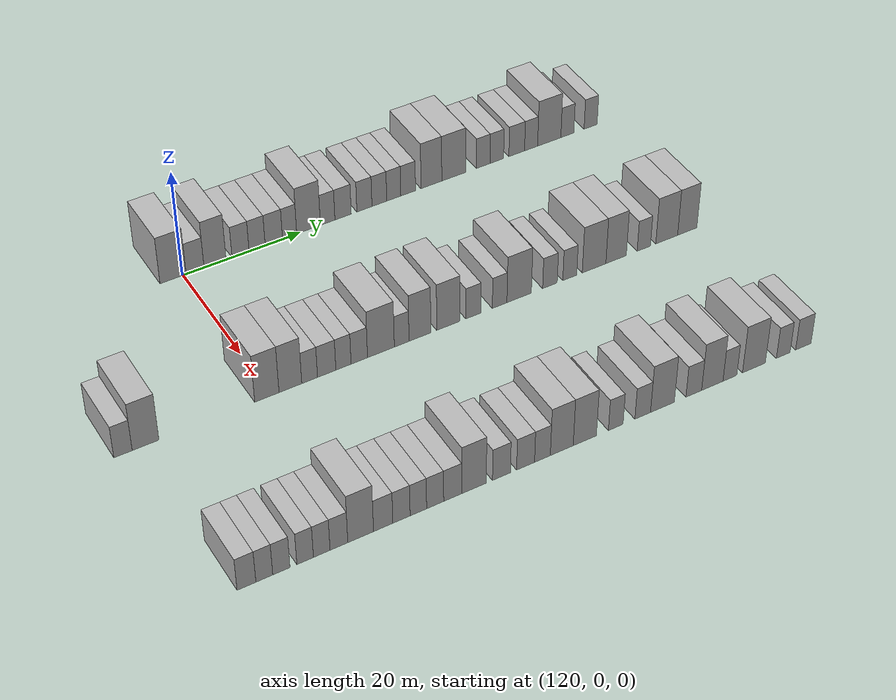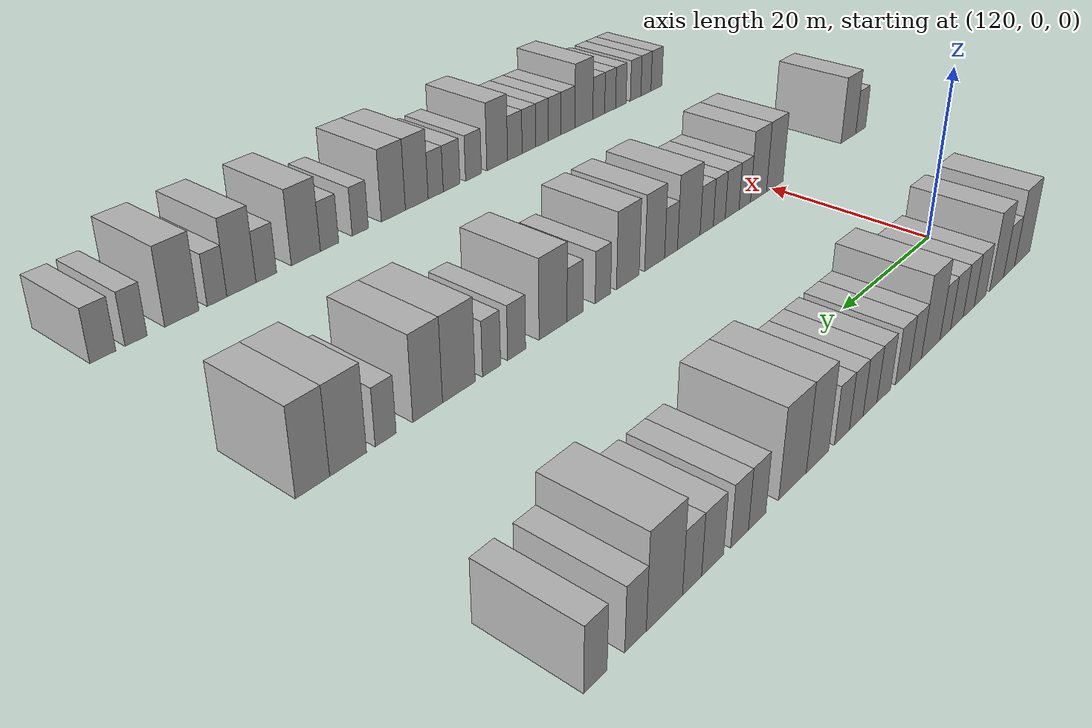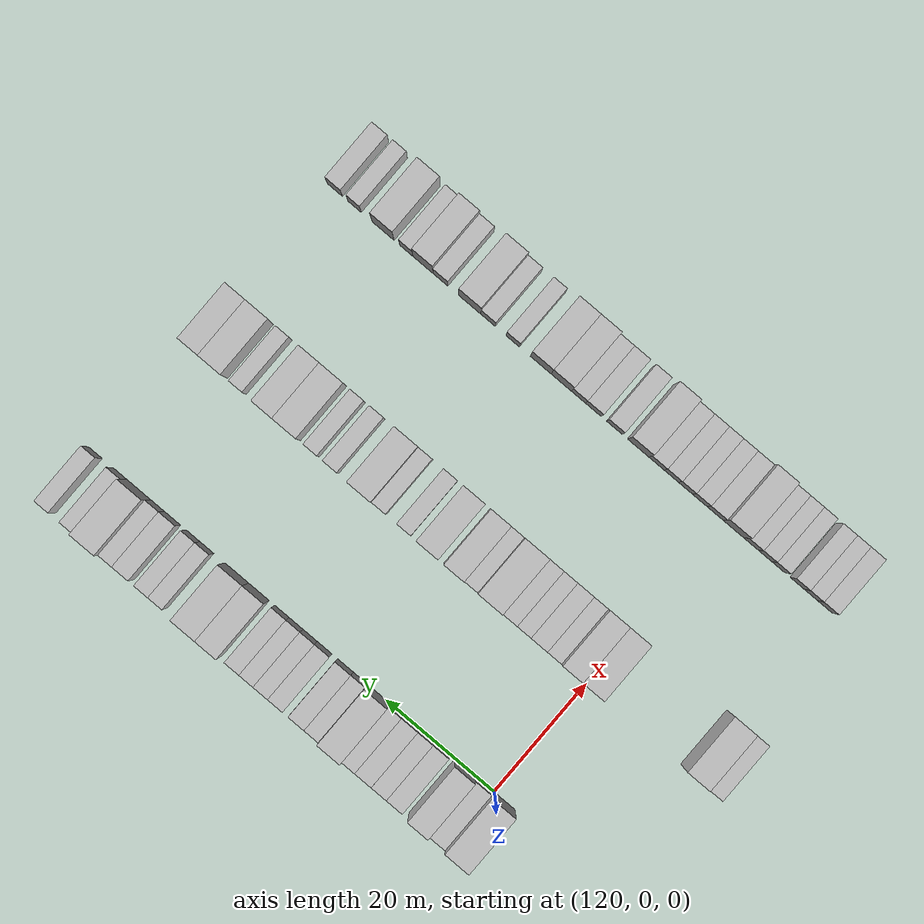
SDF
<sdf version="1.6">
 <world name="default">
  <model name="building_807">
   <static>1</static>
   <pose>115.0000 -1.6387 0 0.000000 0.000000 0.000000</pose>
   <link name="link">
    <pose>0 0 4.50 0 0 0</pose>
    <collision name="collision"><geometry><box><size>10.0000 4.3356 9.0000</size></box></geometry></collision>
    <visual name="visual">
     <cast_shadows>0</cast_shadows>
     <geometry><box><size>10.0000 4.3356 9.0000</size></box></geometry>
     <material>
      <script>
       <uri>model://HANNAS_wall/materials/scripts</uri>
       <uri>model://HANNAS_wall/materials/textures</uri>
       <name>vrc/HANNAS_wall</name>
      </script>
     </material>
    </visual>
   </link>
  </model>
  <model name="building_808">
   <static>1</static>
   <pose>115.0000 2.0270 0 0.000000 0.000000 0.000000</pose>
   <link name="link">
    <pose>0 0 3.00 0 0 0</pose>
    <collision name="collision"><geometry><box><size>10.0000 2.9957 6.0000</size></box></geometry></collision>
    <visual name="visual">
     <cast_shadows>0</cast_shadows>
     <geometry><box><size>10.0000 2.9957 6.0000</size></box></geometry>
     <material>
      <script>
       <uri>model://HANNAS_wall/materials/scripts</uri>
       <uri>model://HANNAS_wall/materials/textures</uri>
       <name>vrc/HANNAS_wall</name>
      </script>
     </material>
    </visual>
   </link>
  </model>
  <model name="building_809">
   <static>1</static>
   <pose>115.0000 5.3848 0 0.000000 0.000000 0.000000</pose>
   <link name="link">
    <pose>0 0 4.50 0 0 0</pose>
    <collision name="collision"><geometry><box><size>10.0000 3.7198 9.0000</size></box></geometry></collision>
    <visual name="visual">
     <cast_shadows>0</cast_shadows>
     <geometry><box><size>10.0000 3.7198 9.0000</size></box></geometry>
     <material>
      <script>
       <uri>model://HANNAS_wall/materials/scripts</uri>
       <uri>model://HANNAS_wall/materials/textures</uri>
       <name>vrc/HANNAS_wall</name>
      </script>
     </material>
    </visual>
   </link>
  </model>
  <model name="building_810">
   <static>1</static>
   <pose>115.0000 9.6994 0 0.000000 0.000000 0.000000</pose>
   <link name="link">
    <pose>0 0 3.00 0 0 0</pose>
    <collision name="collision"><geometry><box><size>10.0000 2.9095 6.0000</size></box></geometry></collision>
    <visual name="visual">
     <cast_shadows>0</cast_shadows>
     <geometry><box><size>10.0000 2.9095 6.0000</size></box></geometry>
     <material>
      <script>
       <uri>model://HANNAS_wall/materials/scripts</uri>
       <uri>model://HANNAS_wall/materials/textures</uri>
       <name>vrc/HANNAS_wall</name>
      </script>
     </material>
    </visual>
   </link>
  </model>
  <model name="building_811">
   <static>1</static>
   <pose>115.0000 12.5316 0 0.000000 0.000000 0.000000</pose>
   <link name="link">
    <pose>0 0 3.00 0 0 0</pose>
    <collision name="collision"><geometry><box><size>10.0000 2.7549 6.0000</size></box></geometry></collision>
    <visual name="visual">
     <cast_shadows>0</cast_shadows>
     <geometry><box><size>10.0000 2.7549 6.0000</size></box></geometry>
     <material>
      <script>
       <uri>model://HANNAS_wall/materials/scripts</uri>
       <uri>model://HANNAS_wall/materials/textures</uri>
       <name>vrc/HANNAS_wall</name>
      </script>
     </material>
    </visual>
   </link>
  </model>
  <model name="building_812">
   <static>1</static>
   <pose>115.0000 15.4057 0 0.000000 0.000000 0.000000</pose>
   <link name="link">
    <pose>0 0 3.00 0 0 0</pose>
    <collision name="collision"><geometry><box><size>10.0000 2.9932 6.0000</size></box></geometry></collision>
    <visual name="visual">
     <cast_shadows>0</cast_shadows>
     <geometry><box><size>10.0000 2.9932 6.0000</size></box></geometry>
     <material>
      <script>
       <uri>model://HANNAS_wall/materials/scripts</uri>
       <uri>model://HANNAS_wall/materials/textures</uri>
       <name>vrc/HANNAS_wall</name>
      </script>
     </material>
    </visual>
   </link>
  </model>
  <model name="building_813">
   <static>1</static>
   <pose>115.0000 18.1333 0 0.000000 0.000000 0.000000</pose>
   <link name="link">
    <pose>0 0 3.00 0 0 0</pose>
    <collision name="collision"><geometry><box><size>10.0000 2.4620 6.0000</size></box></geometry></collision>
    <visual name="visual">
     <cast_shadows>0</cast_shadows>
     <geometry><box><size>10.0000 2.4620 6.0000</size></box></geometry>
     <material>
      <script>
       <uri>model://HANNAS_wall/materials/scripts</uri>
       <uri>model://HANNAS_wall/materials/textures</uri>
       <name>vrc/HANNAS_wall</name>
      </script>
     </material>
    </visual>
   </link>
  </model>
  <model name="building_814">
   <static>1</static>
   <pose>115.0000 21.4364 0 0.000000 0.000000 0.000000</pose>
   <link name="link">
    <pose>0 0 4.50 0 0 0</pose>
    <collision name="collision"><geometry><box><size>10.0000 4.1440 9.0000</size></box></geometry></collision>
    <visual name="visual">
     <cast_shadows>0</cast_shadows>
     <geometry><box><size>10.0000 4.1440 9.0000</size></box></geometry>
     <material>
      <script>
       <uri>model://HANNAS_wall/materials/scripts</uri>
       <uri>model://HANNAS_wall/materials/textures</uri>
       <name>vrc/HANNAS_wall</name>
      </script>
     </material>
    </visual>
   </link>
  </model>
  <model name="building_815">
   <static>1</static>
   <pose>115.0000 24.7890 0 0.000000 0.000000 0.000000</pose>
   <link name="link">
    <pose>0 0 3.00 0 0 0</pose>
    <collision name="collision"><geometry><box><size>10.0000 2.5612 6.0000</size></box></geometry></collision>
    <visual name="visual">
     <cast_shadows>0</cast_shadows>
     <geometry><box><size>10.0000 2.5612 6.0000</size></box></geometry>
     <material>
      <script>
       <uri>model://HANNAS_wall/materials/scripts</uri>
       <uri>model://HANNAS_wall/materials/textures</uri>
       <name>vrc/HANNAS_wall</name>
      </script>
     </material>
    </visual>
   </link>
  </model>
  <model name="building_816">
   <static>1</static>
   <pose>115.0000 27.5146 0 0.000000 0.000000 0.000000</pose>
   <link name="link">
    <pose>0 0 3.00 0 0 0</pose>
    <collision name="collision"><geometry><box><size>10.0000 2.8899 6.0000</size></box></geometry></collision>
    <visual name="visual">
     <cast_shadows>0</cast_shadows>
     <geometry><box><size>10.0000 2.8899 6.0000</size></box></geometry>
     <material>
      <script>
       <uri>model://HANNAS_wall/materials/scripts</uri>
       <uri>model://HANNAS_wall/materials/textures</uri>
       <name>vrc/HANNAS_wall</name>
      </script>
     </material>
    </visual>
   </link>
  </model>
  <model name="building_817">
   <static>1</static>
   <pose>115.0000 31.3121 0 0.000000 0.000000 0.000000</pose>
   <link name="link">
    <pose>0 0 3.00 0 0 0</pose>
    <collision name="collision"><geometry><box><size>10.0000 2.7053 6.0000</size></box></geometry></collision>
    <visual name="visual">
     <cast_shadows>0</cast_shadows>
     <geometry><box><size>10.0000 2.7053 6.0000</size></box></geometry>
     <material>
      <script>
       <uri>model://HANNAS_wall/materials/scripts</uri>
       <uri>model://HANNAS_wall/materials/textures</uri>
       <name>vrc/HANNAS_wall</name>
      </script>
     </material>
    </visual>
   </link>
  </model>
  <model name="building_818">
   <static>1</static>
   <pose>115.0000 33.9917 0 0.000000 0.000000 0.000000</pose>
   <link name="link">
    <pose>0 0 3.00 0 0 0</pose>
    <collision name="collision"><geometry><box><size>10.0000 2.6538 6.0000</size></box></geometry></collision>
    <visual name="visual">
     <cast_shadows>0</cast_shadows>
     <geometry><box><size>10.0000 2.6538 6.0000</size></box></geometry>
     <material>
      <script>
       <uri>model://HANNAS_wall/materials/scripts</uri>
       <uri>model://HANNAS_wall/materials/textures</uri>
       <name>vrc/HANNAS_wall</name>
      </script>
     </material>
    </visual>
   </link>
  </model>
  <model name="building_819">
   <static>1</static>
   <pose>115.0000 36.5908 0 0.000000 0.000000 0.000000</pose>
   <link name="link">
    <pose>0 0 3.00 0 0 0</pose>
    <collision name="collision"><geometry><box><size>10.0000 2.5445 6.0000</size></box></geometry></collision>
    <visual name="visual">
     <cast_shadows>0</cast_shadows>
     <geometry><box><size>10.0000 2.5445 6.0000</size></box></geometry>
     <material>
      <script>
       <uri>model://HANNAS_wall/materials/scripts</uri>
       <uri>model://HANNAS_wall/materials/textures</uri>
       <name>vrc/HANNAS_wall</name>
      </script>
     </material>
    </visual>
   </link>
  </model>
  <model name="building_820">
   <static>1</static>
   <pose>115.0000 39.2015 0 0.000000 0.000000 0.000000</pose>
   <link name="link">
    <pose>0 0 3.00 0 0 0</pose>
    <collision name="collision"><geometry><box><size>10.0000 2.6769 6.0000</size></box></geometry></collision>
    <visual name="visual">
     <cast_shadows>0</cast_shadows>
     <geometry><box><size>10.0000 2.6769 6.0000</size></box></geometry>
     <material>
      <script>
       <uri>model://HANNAS_wall/materials/scripts</uri>
       <uri>model://HANNAS_wall/materials/textures</uri>
       <name>vrc/HANNAS_wall</name>
      </script>
     </material>
    </visual>
   </link>
  </model>
  <model name="building_821">
   <static>1</static>
   <pose>115.0000 43.4533 0 0.000000 0.000000 0.000000</pose>
   <link name="link">
    <pose>0 0 4.50 0 0 0</pose>
    <collision name="collision"><geometry><box><size>10.0000 3.8266 9.0000</size></box></geometry></collision>
    <visual name="visual">
     <cast_shadows>0</cast_shadows>
     <geometry><box><size>10.0000 3.8266 9.0000</size></box></geometry>
     <material>
      <script>
       <uri>model://HANNAS_wall/materials/scripts</uri>
       <uri>model://HANNAS_wall/materials/textures</uri>
       <name>vrc/HANNAS_wall</name>
      </script>
     </material>
    </visual>
   </link>
  </model>
  <model name="building_822">
   <static>1</static>
   <pose>115.0000 47.5767 0 0.000000 0.000000 0.000000</pose>
   <link name="link">
    <pose>0 0 4.50 0 0 0</pose>
    <collision name="collision"><geometry><box><size>10.0000 4.4203 9.0000</size></box></geometry></collision>
    <visual name="visual">
     <cast_shadows>0</cast_shadows>
     <geometry><box><size>10.0000 4.4203 9.0000</size></box></geometry>
     <material>
      <script>
       <uri>model://HANNAS_wall/materials/scripts</uri>
       <uri>model://HANNAS_wall/materials/textures</uri>
       <name>vrc/HANNAS_wall</name>
      </script>
     </material>
    </visual>
   </link>
  </model>
  <model name="building_823">
   <static>1</static>
   <pose>115.0000 53.0762 0 0.000000 0.000000 0.000000</pose>
   <link name="link">
    <pose>0 0 3.00 0 0 0</pose>
    <collision name="collision"><geometry><box><size>10.0000 2.5787 6.0000</size></box></geometry></collision>
    <visual name="visual">
     <cast_shadows>0</cast_shadows>
     <geometry><box><size>10.0000 2.5787 6.0000</size></box></geometry>
     <material>
      <script>
       <uri>model://HANNAS_wall/materials/scripts</uri>
       <uri>model://HANNAS_wall/materials/textures</uri>
       <name>vrc/HANNAS_wall</name>
      </script>
     </material>
    </visual>
   </link>
  </model>
  <model name="building_824">
   <static>1</static>
   <pose>115.0000 55.6441 0 0.000000 0.000000 0.000000</pose>
   <link name="link">
    <pose>0 0 3.00 0 0 0</pose>
    <collision name="collision"><geometry><box><size>10.0000 2.5570 6.0000</size></box></geometry></collision>
    <visual name="visual">
     <cast_shadows>0</cast_shadows>
     <geometry><box><size>10.0000 2.5570 6.0000</size></box></geometry>
     <material>
      <script>
       <uri>model://HANNAS_wall/materials/scripts</uri>
       <uri>model://HANNAS_wall/materials/textures</uri>
       <name>vrc/HANNAS_wall</name>
      </script>
     </material>
    </visual>
   </link>
  </model>
  <model name="building_825">
   <static>1</static>
   <pose>115.0000 59.4169 0 0.000000 0.000000 0.000000</pose>
   <link name="link">
    <pose>0 0 3.00 0 0 0</pose>
    <collision name="collision"><geometry><box><size>10.0000 2.9887 6.0000</size></box></geometry></collision>
    <visual name="visual">
     <cast_shadows>0</cast_shadows>
     <geometry><box><size>10.0000 2.9887 6.0000</size></box></geometry>
     <material>
      <script>
       <uri>model://HANNAS_wall/materials/scripts</uri>
       <uri>model://HANNAS_wall/materials/textures</uri>
       <name>vrc/HANNAS_wall</name>
      </script>
     </material>
    </visual>
   </link>
  </model>
  <model name="building_826">
   <static>1</static>
   <pose>115.0000 62.1593 0 0.000000 0.000000 0.000000</pose>
   <link name="link">
    <pose>0 0 3.00 0 0 0</pose>
    <collision name="collision"><geometry><box><size>10.0000 2.4961 6.0000</size></box></geometry></collision>
    <visual name="visual">
     <cast_shadows>0</cast_shadows>
     <geometry><box><size>10.0000 2.4961 6.0000</size></box></geometry>
     <material>
      <script>
       <uri>model://HANNAS_wall/materials/scripts</uri>
       <uri>model://HANNAS_wall/materials/textures</uri>
       <name>vrc/HANNAS_wall</name>
      </script>
     </material>
    </visual>
   </link>
  </model>
  <model name="building_827">
   <static>1</static>
   <pose>115.0000 65.6515 0 0.000000 0.000000 0.000000</pose>
   <link name="link">
    <pose>0 0 4.50 0 0 0</pose>
    <collision name="collision"><geometry><box><size>10.0000 4.4883 9.0000</size></box></geometry></collision>
    <visual name="visual">
     <cast_shadows>0</cast_shadows>
     <geometry><box><size>10.0000 4.4883 9.0000</size></box></geometry>
     <material>
      <script>
       <uri>model://HANNAS_wall/materials/scripts</uri>
       <uri>model://HANNAS_wall/materials/textures</uri>
       <name>vrc/HANNAS_wall</name>
      </script>
     </material>
    </visual>
   </link>
  </model>
  <model name="building_828">
   <static>1</static>
   <pose>115.0000 69.1563 0 0.000000 0.000000 0.000000</pose>
   <link name="link">
    <pose>0 0 3.00 0 0 0</pose>
    <collision name="collision"><geometry><box><size>10.0000 2.5214 6.0000</size></box></geometry></collision>
    <visual name="visual">
     <cast_shadows>0</cast_shadows>
     <geometry><box><size>10.0000 2.5214 6.0000</size></box></geometry>
     <material>
      <script>
       <uri>model://HANNAS_wall/materials/scripts</uri>
       <uri>model://HANNAS_wall/materials/textures</uri>
       <name>vrc/HANNAS_wall</name>
      </script>
     </material>
    </visual>
   </link>
  </model>
  <model name="building_829">
   <static>1</static>
   <pose>115.0000 73.6967 0 0.000000 0.000000 0.000000</pose>
   <link name="link">
    <pose>0 0 3.00 0 0 0</pose>
    <collision name="collision"><geometry><box><size>10.0000 2.5594 6.0000</size></box></geometry></collision>
    <visual name="visual">
     <cast_shadows>0</cast_shadows>
     <geometry><box><size>10.0000 2.5594 6.0000</size></box></geometry>
     <material>
      <script>
       <uri>model://HANNAS_wall/materials/scripts</uri>
       <uri>model://HANNAS_wall/materials/textures</uri>
       <name>vrc/HANNAS_wall</name>
      </script>
     </material>
    </visual>
   </link>
  </model>
  <model name="building_1024">
   <static>1</static>
   <pose>145.0000 -22.8852 0 0.000000 0.000000 0.000000</pose>
   <link name="link">
    <pose>0 0 3.00 0 0 0</pose>
    <collision name="collision"><geometry><box><size>10.0000 2.7635 6.0000</size></box></geometry></collision>
    <visual name="visual">
     <cast_shadows>0</cast_shadows>
     <geometry><box><size>10.0000 2.7635 6.0000</size></box></geometry>
     <material>
      <script>
       <uri>model://HANNAS_wall/materials/scripts</uri>
       <uri>model://HANNAS_wall/materials/textures</uri>
       <name>vrc/HANNAS_wall</name>
      </script>
     </material>
    </visual>
   </link>
  </model>
  <model name="building_1025">
   <static>1</static>
   <pose>145.0000 -19.4761 0 0.000000 0.000000 0.000000</pose>
   <link name="link">
    <pose>0 0 4.50 0 0 0</pose>
    <collision name="collision"><geometry><box><size>10.0000 4.0546 9.0000</size></box></geometry></collision>
    <visual name="visual">
     <cast_shadows>0</cast_shadows>
     <geometry><box><size>10.0000 4.0546 9.0000</size></box></geometry>
     <material>
      <script>
       <uri>model://HANNAS_wall/materials/scripts</uri>
       <uri>model://HANNAS_wall/materials/textures</uri>
       <name>vrc/HANNAS_wall</name>
      </script>
     </material>
    </visual>
   </link>
  </model>
  <model name="building_1026">
   <static>1</static>
   <pose>145.0000 -0.6493 0 0.000000 0.000000 0.000000</pose>
   <link name="link">
    <pose>0 0 4.50 0 0 0</pose>
    <collision name="collision"><geometry><box><size>10.0000 3.8664 9.0000</size></box></geometry></collision>
    <visual name="visual">
     <cast_shadows>0</cast_shadows>
     <geometry><box><size>10.0000 3.8664 9.0000</size></box></geometry>
     <material>
      <script>
       <uri>model://HANNAS_wall/materials/scripts</uri>
       <uri>model://HANNAS_wall/materials/textures</uri>
       <name>vrc/HANNAS_wall</name>
      </script>
     </material>
    </visual>
   </link>
  </model>
  <model name="building_1027">
   <static>1</static>
   <pose>145.0000 3.1093 0 0.000000 0.000000 0.000000</pose>
   <link name="link">
    <pose>0 0 4.50 0 0 0</pose>
    <collision name="collision"><geometry><box><size>10.0000 3.6510 9.0000</size></box></geometry></collision>
    <visual name="visual">
     <cast_shadows>0</cast_shadows>
     <geometry><box><size>10.0000 3.6510 9.0000</size></box></geometry>
     <material>
      <script>
       <uri>model://HANNAS_wall/materials/scripts</uri>
       <uri>model://HANNAS_wall/materials/textures</uri>
       <name>vrc/HANNAS_wall</name>
      </script>
     </material>
    </visual>
   </link>
  </model>
  <model name="building_1028">
   <static>1</static>
   <pose>145.0000 6.2055 0 0.000000 0.000000 0.000000</pose>
   <link name="link">
    <pose>0 0 3.00 0 0 0</pose>
    <collision name="collision"><geometry><box><size>10.0000 2.5413 6.0000</size></box></geometry></collision>
    <visual name="visual">
     <cast_shadows>0</cast_shadows>
     <geometry><box><size>10.0000 2.5413 6.0000</size></box></geometry>
     <material>
      <script>
       <uri>model://HANNAS_wall/materials/scripts</uri>
       <uri>model://HANNAS_wall/materials/textures</uri>
       <name>vrc/HANNAS_wall</name>
      </script>
     </material>
    </visual>
   </link>
  </model>
  <model name="building_1029">
   <static>1</static>
   <pose>145.0000 8.9700 0 0.000000 0.000000 0.000000</pose>
   <link name="link">
    <pose>0 0 3.00 0 0 0</pose>
    <collision name="collision"><geometry><box><size>10.0000 2.9878 6.0000</size></box></geometry></collision>
    <visual name="visual">
     <cast_shadows>0</cast_shadows>
     <geometry><box><size>10.0000 2.9878 6.0000</size></box></geometry>
     <material>
      <script>
       <uri>model://HANNAS_wall/materials/scripts</uri>
       <uri>model://HANNAS_wall/materials/textures</uri>
       <name>vrc/HANNAS_wall</name>
      </script>
     </material>
    </visual>
   </link>
  </model>
  <model name="building_1030">
   <static>1</static>
   <pose>145.0000 11.7103 0 0.000000 0.000000 0.000000</pose>
   <link name="link">
    <pose>0 0 3.00 0 0 0</pose>
    <collision name="collision"><geometry><box><size>10.0000 2.4926 6.0000</size></box></geometry></collision>
    <visual name="visual">
     <cast_shadows>0</cast_shadows>
     <geometry><box><size>10.0000 2.4926 6.0000</size></box></geometry>
     <material>
      <script>
       <uri>model://HANNAS_wall/materials/scripts</uri>
       <uri>model://HANNAS_wall/materials/textures</uri>
       <name>vrc/HANNAS_wall</name>
      </script>
     </material>
    </visual>
   </link>
  </model>
  <model name="building_1031">
   <static>1</static>
   <pose>145.0000 14.3102 0 0.000000 0.000000 0.000000</pose>
   <link name="link">
    <pose>0 0 3.00 0 0 0</pose>
    <collision name="collision"><geometry><box><size>10.0000 2.7072 6.0000</size></box></geometry></collision>
    <visual name="visual">
     <cast_shadows>0</cast_shadows>
     <geometry><box><size>10.0000 2.7072 6.0000</size></box></geometry>
     <material>
      <script>
       <uri>model://HANNAS_wall/materials/scripts</uri>
       <uri>model://HANNAS_wall/materials/textures</uri>
       <name>vrc/HANNAS_wall</name>
      </script>
     </material>
    </visual>
   </link>
  </model>
  <model name="building_1032">
   <static>1</static>
   <pose>145.0000 17.8958 0 0.000000 0.000000 0.000000</pose>
   <link name="link">
    <pose>0 0 4.50 0 0 0</pose>
    <collision name="collision"><geometry><box><size>10.0000 4.4640 9.0000</size></box></geometry></collision>
    <visual name="visual">
     <cast_shadows>0</cast_shadows>
     <geometry><box><size>10.0000 4.4640 9.0000</size></box></geometry>
     <material>
      <script>
       <uri>model://HANNAS_wall/materials/scripts</uri>
       <uri>model://HANNAS_wall/materials/textures</uri>
       <name>vrc/HANNAS_wall</name>
      </script>
     </material>
    </visual>
   </link>
  </model>
  <model name="building_1033">
   <static>1</static>
   <pose>145.0000 21.3589 0 0.000000 0.000000 0.000000</pose>
   <link name="link">
    <pose>0 0 3.00 0 0 0</pose>
    <collision name="collision"><geometry><box><size>10.0000 2.4622 6.0000</size></box></geometry></collision>
    <visual name="visual">
     <cast_shadows>0</cast_shadows>
     <geometry><box><size>10.0000 2.4622 6.0000</size></box></geometry>
     <material>
      <script>
       <uri>model://HANNAS_wall/materials/scripts</uri>
       <uri>model://HANNAS_wall/materials/textures</uri>
       <name>vrc/HANNAS_wall</name>
      </script>
     </material>
    </visual>
   </link>
  </model>
  <model name="building_1034">
   <static>1</static>
   <pose>145.0000 24.4289 0 0.000000 0.000000 0.000000</pose>
   <link name="link">
    <pose>0 0 4.50 0 0 0</pose>
    <collision name="collision"><geometry><box><size>10.0000 3.6777 9.0000</size></box></geometry></collision>
    <visual name="visual">
     <cast_shadows>0</cast_shadows>
     <geometry><box><size>10.0000 3.6777 9.0000</size></box></geometry>
     <material>
      <script>
       <uri>model://HANNAS_wall/materials/scripts</uri>
       <uri>model://HANNAS_wall/materials/textures</uri>
       <name>vrc/HANNAS_wall</name>
      </script>
     </material>
    </visual>
   </link>
  </model>
  <model name="building_1035">
   <static>1</static>
   <pose>145.0000 29.2596 0 0.000000 0.000000 0.000000</pose>
   <link name="link">
    <pose>0 0 4.50 0 0 0</pose>
    <collision name="collision"><geometry><box><size>10.0000 3.9838 9.0000</size></box></geometry></collision>
    <visual name="visual">
     <cast_shadows>0</cast_shadows>
     <geometry><box><size>10.0000 3.9838 9.0000</size></box></geometry>
     <material>
      <script>
       <uri>model://HANNAS_wall/materials/scripts</uri>
       <uri>model://HANNAS_wall/materials/textures</uri>
       <name>vrc/HANNAS_wall</name>
      </script>
     </material>
    </visual>
   </link>
  </model>
  <model name="building_1036">
   <static>1</static>
   <pose>145.0000 33.5498 0 0.000000 0.000000 0.000000</pose>
   <link name="link">
    <pose>0 0 3.00 0 0 0</pose>
    <collision name="collision"><geometry><box><size>10.0000 2.5966 6.0000</size></box></geometry></collision>
    <visual name="visual">
     <cast_shadows>0</cast_shadows>
     <geometry><box><size>10.0000 2.5966 6.0000</size></box></geometry>
     <material>
      <script>
       <uri>model://HANNAS_wall/materials/scripts</uri>
       <uri>model://HANNAS_wall/materials/textures</uri>
       <name>vrc/HANNAS_wall</name>
      </script>
     </material>
    </visual>
   </link>
  </model>
  <model name="building_1037">
   <static>1</static>
   <pose>145.0000 38.1215 0 0.000000 0.000000 0.000000</pose>
   <link name="link">
    <pose>0 0 3.00 0 0 0</pose>
    <collision name="collision"><geometry><box><size>10.0000 2.5469 6.0000</size></box></geometry></collision>
    <visual name="visual">
     <cast_shadows>0</cast_shadows>
     <geometry><box><size>10.0000 2.5469 6.0000</size></box></geometry>
     <material>
      <script>
       <uri>model://HANNAS_wall/materials/scripts</uri>
       <uri>model://HANNAS_wall/materials/textures</uri>
       <name>vrc/HANNAS_wall</name>
      </script>
     </material>
    </visual>
   </link>
  </model>
  <model name="building_1038">
   <static>1</static>
   <pose>145.0000 41.5431 0 0.000000 0.000000 0.000000</pose>
   <link name="link">
    <pose>0 0 4.50 0 0 0</pose>
    <collision name="collision"><geometry><box><size>10.0000 4.2962 9.0000</size></box></geometry></collision>
    <visual name="visual">
     <cast_shadows>0</cast_shadows>
     <geometry><box><size>10.0000 4.2962 9.0000</size></box></geometry>
     <material>
      <script>
       <uri>model://HANNAS_wall/materials/scripts</uri>
       <uri>model://HANNAS_wall/materials/textures</uri>
       <name>vrc/HANNAS_wall</name>
      </script>
     </material>
    </visual>
   </link>
  </model>
  <model name="building_1039">
   <static>1</static>
   <pose>145.0000 46.9899 0 0.000000 0.000000 0.000000</pose>
   <link name="link">
    <pose>0 0 3.00 0 0 0</pose>
    <collision name="collision"><geometry><box><size>10.0000 2.5973 6.0000</size></box></geometry></collision>
    <visual name="visual">
     <cast_shadows>0</cast_shadows>
     <geometry><box><size>10.0000 2.5973 6.0000</size></box></geometry>
     <material>
      <script>
       <uri>model://HANNAS_wall/materials/scripts</uri>
       <uri>model://HANNAS_wall/materials/textures</uri>
       <name>vrc/HANNAS_wall</name>
      </script>
     </material>
    </visual>
   </link>
  </model>
  <model name="building_1040">
   <static>1</static>
   <pose>145.0000 50.5387 0 0.000000 0.000000 0.000000</pose>
   <link name="link">
    <pose>0 0 3.00 0 0 0</pose>
    <collision name="collision"><geometry><box><size>10.0000 2.5004 6.0000</size></box></geometry></collision>
    <visual name="visual">
     <cast_shadows>0</cast_shadows>
     <geometry><box><size>10.0000 2.5004 6.0000</size></box></geometry>
     <material>
      <script>
       <uri>model://HANNAS_wall/materials/scripts</uri>
       <uri>model://HANNAS_wall/materials/textures</uri>
       <name>vrc/HANNAS_wall</name>
      </script>
     </material>
    </visual>
   </link>
  </model>
  <model name="building_1041">
   <static>1</static>
   <pose>145.0000 54.9370 0 0.000000 0.000000 0.000000</pose>
   <link name="link">
    <pose>0 0 4.50 0 0 0</pose>
    <collision name="collision"><geometry><box><size>10.0000 4.2962 9.0000</size></box></geometry></collision>
    <visual name="visual">
     <cast_shadows>0</cast_shadows>
     <geometry><box><size>10.0000 4.2962 9.0000</size></box></geometry>
     <material>
      <script>
       <uri>model://HANNAS_wall/materials/scripts</uri>
       <uri>model://HANNAS_wall/materials/textures</uri>
       <name>vrc/HANNAS_wall</name>
      </script>
     </material>
    </visual>
   </link>
  </model>
  <model name="building_1042">
   <static>1</static>
   <pose>145.0000 58.9555 0 0.000000 0.000000 0.000000</pose>
   <link name="link">
    <pose>0 0 4.50 0 0 0</pose>
    <collision name="collision"><geometry><box><size>10.0000 3.7409 9.0000</size></box></geometry></collision>
    <visual name="visual">
     <cast_shadows>0</cast_shadows>
     <geometry><box><size>10.0000 3.7409 9.0000</size></box></geometry>
     <material>
      <script>
       <uri>model://HANNAS_wall/materials/scripts</uri>
       <uri>model://HANNAS_wall/materials/textures</uri>
       <name>vrc/HANNAS_wall</name>
      </script>
     </material>
    </visual>
   </link>
  </model>
  <model name="building_1043">
   <static>1</static>
   <pose>145.0000 64.0579 0 0.000000 0.000000 0.000000</pose>
   <link name="link">
    <pose>0 0 3.00 0 0 0</pose>
    <collision name="collision"><geometry><box><size>10.0000 2.4638 6.0000</size></box></geometry></collision>
    <visual name="visual">
     <cast_shadows>0</cast_shadows>
     <geometry><box><size>10.0000 2.4638 6.0000</size></box></geometry>
     <material>
      <script>
       <uri>model://HANNAS_wall/materials/scripts</uri>
       <uri>model://HANNAS_wall/materials/textures</uri>
       <name>vrc/HANNAS_wall</name>
      </script>
     </material>
    </visual>
   </link>
  </model>
  <model name="building_1044">
   <static>1</static>
   <pose>145.0000 68.3357 0 0.000000 0.000000 0.000000</pose>
   <link name="link">
    <pose>0 0 4.50 0 0 0</pose>
    <collision name="collision"><geometry><box><size>10.0000 4.0919 9.0000</size></box></geometry></collision>
    <visual name="visual">
     <cast_shadows>0</cast_shadows>
     <geometry><box><size>10.0000 4.0919 9.0000</size></box></geometry>
     <material>
      <script>
       <uri>model://HANNAS_wall/materials/scripts</uri>
       <uri>model://HANNAS_wall/materials/textures</uri>
       <name>vrc/HANNAS_wall</name>
      </script>
     </material>
    </visual>
   </link>
  </model>
  <model name="building_1045">
   <static>1</static>
   <pose>145.0000 72.1992 0 0.000000 0.000000 0.000000</pose>
   <link name="link">
    <pose>0 0 4.50 0 0 0</pose>
    <collision name="collision"><geometry><box><size>10.0000 3.6350 9.0000</size></box></geometry></collision>
    <visual name="visual">
     <cast_shadows>0</cast_shadows>
     <geometry><box><size>10.0000 3.6350 9.0000</size></box></geometry>
     <material>
      <script>
       <uri>model://HANNAS_wall/materials/scripts</uri>
       <uri>model://HANNAS_wall/materials/textures</uri>
       <name>vrc/HANNAS_wall</name>
      </script>
     </material>
    </visual>
   </link>
  </model>
  <model name="building_1252">
   <static>1</static>
   <pose>175.0000 -18.4674 0 0.000000 0.000000 0.000000</pose>
   <link name="link">
    <pose>0 0 3.00 0 0 0</pose>
    <collision name="collision"><geometry><box><size>10.0000 2.7276 6.0000</size></box></geometry></collision>
    <visual name="visual">
     <cast_shadows>0</cast_shadows>
     <geometry><box><size>10.0000 2.7276 6.0000</size></box></geometry>
     <material>
      <script>
       <uri>model://HANNAS_wall/materials/scripts</uri>
       <uri>model://HANNAS_wall/materials/textures</uri>
       <name>vrc/HANNAS_wall</name>
      </script>
     </material>
    </visual>
   </link>
  </model>
  <model name="building_1253">
   <static>1</static>
   <pose>175.0000 -15.8739 0 0.000000 0.000000 0.000000</pose>
   <link name="link">
    <pose>0 0 3.00 0 0 0</pose>
    <collision name="collision"><geometry><box><size>10.0000 2.4594 6.0000</size></box></geometry></collision>
    <visual name="visual">
     <cast_shadows>0</cast_shadows>
     <geometry><box><size>10.0000 2.4594 6.0000</size></box></geometry>
     <material>
      <script>
       <uri>model://HANNAS_wall/materials/scripts</uri>
       <uri>model://HANNAS_wall/materials/textures</uri>
       <name>vrc/HANNAS_wall</name>
      </script>
     </material>
    </visual>
   </link>
  </model>
  <model name="building_1254">
   <static>1</static>
   <pose>175.0000 -13.3791 0 0.000000 0.000000 0.000000</pose>
   <link name="link">
    <pose>0 0 3.00 0 0 0</pose>
    <collision name="collision"><geometry><box><size>10.0000 2.5302 6.0000</size></box></geometry></collision>
    <visual name="visual">
     <cast_shadows>0</cast_shadows>
     <geometry><box><size>10.0000 2.5302 6.0000</size></box></geometry>
     <material>
      <script>
       <uri>model://HANNAS_wall/materials/scripts</uri>
       <uri>model://HANNAS_wall/materials/textures</uri>
       <name>vrc/HANNAS_wall</name>
      </script>
     </material>
    </visual>
   </link>
  </model>
  <model name="building_1255">
   <static>1</static>
   <pose>175.0000 -9.8838 0 0.000000 0.000000 0.000000</pose>
   <link name="link">
    <pose>0 0 3.00 0 0 0</pose>
    <collision name="collision"><geometry><box><size>10.0000 2.4604 6.0000</size></box></geometry></collision>
    <visual name="visual">
     <cast_shadows>0</cast_shadows>
     <geometry><box><size>10.0000 2.4604 6.0000</size></box></geometry>
     <material>
      <script>
       <uri>model://HANNAS_wall/materials/scripts</uri>
       <uri>model://HANNAS_wall/materials/textures</uri>
       <name>vrc/HANNAS_wall</name>
      </script>
     </material>
    </visual>
   </link>
  </model>
  <model name="building_1256">
   <static>1</static>
   <pose>175.0000 -7.4159 0 0.000000 0.000000 0.000000</pose>
   <link name="link">
    <pose>0 0 3.00 0 0 0</pose>
    <collision name="collision"><geometry><box><size>10.0000 2.4752 6.0000</size></box></geometry></collision>
    <visual name="visual">
     <cast_shadows>0</cast_shadows>
     <geometry><box><size>10.0000 2.4752 6.0000</size></box></geometry>
     <material>
      <script>
       <uri>model://HANNAS_wall/materials/scripts</uri>
       <uri>model://HANNAS_wall/materials/textures</uri>
       <name>vrc/HANNAS_wall</name>
      </script>
     </material>
    </visual>
   </link>
  </model>
  <model name="building_1257">
   <static>1</static>
   <pose>175.0000 -4.8483 0 0.000000 0.000000 0.000000</pose>
   <link name="link">
    <pose>0 0 3.00 0 0 0</pose>
    <collision name="collision"><geometry><box><size>10.0000 2.6601 6.0000</size></box></geometry></collision>
    <visual name="visual">
     <cast_shadows>0</cast_shadows>
     <geometry><box><size>10.0000 2.6601 6.0000</size></box></geometry>
     <material>
      <script>
       <uri>model://HANNAS_wall/materials/scripts</uri>
       <uri>model://HANNAS_wall/materials/textures</uri>
       <name>vrc/HANNAS_wall</name>
      </script>
     </material>
    </visual>
   </link>
  </model>
  <model name="building_1258">
   <static>1</static>
   <pose>175.0000 -1.5693 0 0.000000 0.000000 0.000000</pose>
   <link name="link">
    <pose>0 0 4.50 0 0 0</pose>
    <collision name="collision"><geometry><box><size>10.0000 3.8978 9.0000</size></box></geometry></collision>
    <visual name="visual">
     <cast_shadows>0</cast_shadows>
     <geometry><box><size>10.0000 3.8978 9.0000</size></box></geometry>
     <material>
      <script>
       <uri>model://HANNAS_wall/materials/scripts</uri>
       <uri>model://HANNAS_wall/materials/textures</uri>
       <name>vrc/HANNAS_wall</name>
      </script>
     </material>
    </visual>
   </link>
  </model>
  <model name="building_1259">
   <static>1</static>
   <pose>175.0000 1.8531 0 0.000000 0.000000 0.000000</pose>
   <link name="link">
    <pose>0 0 3.00 0 0 0</pose>
    <collision name="collision"><geometry><box><size>10.0000 2.9470 6.0000</size></box></geometry></collision>
    <visual name="visual">
     <cast_shadows>0</cast_shadows>
     <geometry><box><size>10.0000 2.9470 6.0000</size></box></geometry>
     <material>
      <script>
       <uri>model://HANNAS_wall/materials/scripts</uri>
       <uri>model://HANNAS_wall/materials/textures</uri>
       <name>vrc/HANNAS_wall</name>
      </script>
     </material>
    </visual>
   </link>
  </model>
  <model name="building_1260">
   <static>1</static>
   <pose>175.0000 4.6566 0 0.000000 0.000000 0.000000</pose>
   <link name="link">
    <pose>0 0 3.00 0 0 0</pose>
    <collision name="collision"><geometry><box><size>10.0000 2.6600 6.0000</size></box></geometry></collision>
    <visual name="visual">
     <cast_shadows>0</cast_shadows>
     <geometry><box><size>10.0000 2.6600 6.0000</size></box></geometry>
     <material>
      <script>
       <uri>model://HANNAS_wall/materials/scripts</uri>
       <uri>model://HANNAS_wall/materials/textures</uri>
       <name>vrc/HANNAS_wall</name>
      </script>
     </material>
    </visual>
   </link>
  </model>
  <model name="building_1261">
   <static>1</static>
   <pose>175.0000 7.2639 0 0.000000 0.000000 0.000000</pose>
   <link name="link">
    <pose>0 0 3.00 0 0 0</pose>
    <collision name="collision"><geometry><box><size>10.0000 2.5546 6.0000</size></box></geometry></collision>
    <visual name="visual">
     <cast_shadows>0</cast_shadows>
     <geometry><box><size>10.0000 2.5546 6.0000</size></box></geometry>
     <material>
      <script>
       <uri>model://HANNAS_wall/materials/scripts</uri>
       <uri>model://HANNAS_wall/materials/textures</uri>
       <name>vrc/HANNAS_wall</name>
      </script>
     </material>
    </visual>
   </link>
  </model>
  <model name="building_1262">
   <static>1</static>
   <pose>175.0000 9.8747 0 0.000000 0.000000 0.000000</pose>
   <link name="link">
    <pose>0 0 3.00 0 0 0</pose>
    <collision name="collision"><geometry><box><size>10.0000 2.6670 6.0000</size></box></geometry></collision>
    <visual name="visual">
     <cast_shadows>0</cast_shadows>
     <geometry><box><size>10.0000 2.6670 6.0000</size></box></geometry>
     <material>
      <script>
       <uri>model://HANNAS_wall/materials/scripts</uri>
       <uri>model://HANNAS_wall/materials/textures</uri>
       <name>vrc/HANNAS_wall</name>
      </script>
     </material>
    </visual>
   </link>
  </model>
  <model name="building_1263">
   <static>1</static>
   <pose>175.0000 12.6154 0 0.000000 0.000000 0.000000</pose>
   <link name="link">
    <pose>0 0 3.00 0 0 0</pose>
    <collision name="collision"><geometry><box><size>10.0000 2.8145 6.0000</size></box></geometry></collision>
    <visual name="visual">
     <cast_shadows>0</cast_shadows>
     <geometry><box><size>10.0000 2.8145 6.0000</size></box></geometry>
     <material>
      <script>
       <uri>model://HANNAS_wall/materials/scripts</uri>
       <uri>model://HANNAS_wall/materials/textures</uri>
       <name>vrc/HANNAS_wall</name>
      </script>
     </material>
    </visual>
   </link>
  </model>
  <model name="building_1264">
   <static>1</static>
   <pose>175.0000 15.9699 0 0.000000 0.000000 0.000000</pose>
   <link name="link">
    <pose>0 0 4.50 0 0 0</pose>
    <collision name="collision"><geometry><box><size>10.0000 3.8944 9.0000</size></box></geometry></collision>
    <visual name="visual">
     <cast_shadows>0</cast_shadows>
     <geometry><box><size>10.0000 3.8944 9.0000</size></box></geometry>
     <material>
      <script>
       <uri>model://HANNAS_wall/materials/scripts</uri>
       <uri>model://HANNAS_wall/materials/textures</uri>
       <name>vrc/HANNAS_wall</name>
      </script>
     </material>
    </visual>
   </link>
  </model>
  <model name="building_1265">
   <static>1</static>
   <pose>175.0000 20.3547 0 0.000000 0.000000 0.000000</pose>
   <link name="link">
    <pose>0 0 3.00 0 0 0</pose>
    <collision name="collision"><geometry><box><size>10.0000 2.8752 6.0000</size></box></geometry></collision>
    <visual name="visual">
     <cast_shadows>0</cast_shadows>
     <geometry><box><size>10.0000 2.8752 6.0000</size></box></geometry>
     <material>
      <script>
       <uri>model://HANNAS_wall/materials/scripts</uri>
       <uri>model://HANNAS_wall/materials/textures</uri>
       <name>vrc/HANNAS_wall</name>
      </script>
     </material>
    </visual>
   </link>
  </model>
  <model name="building_1266">
   <static>1</static>
   <pose>175.0000 24.2449 0 0.000000 0.000000 0.000000</pose>
   <link name="link">
    <pose>0 0 3.00 0 0 0</pose>
    <collision name="collision"><geometry><box><size>10.0000 2.9052 6.0000</size></box></geometry></collision>
    <visual name="visual">
     <cast_shadows>0</cast_shadows>
     <geometry><box><size>10.0000 2.9052 6.0000</size></box></geometry>
     <material>
      <script>
       <uri>model://HANNAS_wall/materials/scripts</uri>
       <uri>model://HANNAS_wall/materials/textures</uri>
       <name>vrc/HANNAS_wall</name>
      </script>
     </material>
    </visual>
   </link>
  </model>
  <model name="building_1267">
   <static>1</static>
   <pose>175.0000 26.9835 0 0.000000 0.000000 0.000000</pose>
   <link name="link">
    <pose>0 0 3.00 0 0 0</pose>
    <collision name="collision"><geometry><box><size>10.0000 2.5719 6.0000</size></box></geometry></collision>
    <visual name="visual">
     <cast_shadows>0</cast_shadows>
     <geometry><box><size>10.0000 2.5719 6.0000</size></box></geometry>
     <material>
      <script>
       <uri>model://HANNAS_wall/materials/scripts</uri>
       <uri>model://HANNAS_wall/materials/textures</uri>
       <name>vrc/HANNAS_wall</name>
      </script>
     </material>
    </visual>
   </link>
  </model>
  <model name="building_1268">
   <static>1</static>
   <pose>175.0000 30.1524 0 0.000000 0.000000 0.000000</pose>
   <link name="link">
    <pose>0 0 4.50 0 0 0</pose>
    <collision name="collision"><geometry><box><size>10.0000 3.7660 9.0000</size></box></geometry></collision>
    <visual name="visual">
     <cast_shadows>0</cast_shadows>
     <geometry><box><size>10.0000 3.7660 9.0000</size></box></geometry>
     <material>
      <script>
       <uri>model://HANNAS_wall/materials/scripts</uri>
       <uri>model://HANNAS_wall/materials/textures</uri>
       <name>vrc/HANNAS_wall</name>
      </script>
     </material>
    </visual>
   </link>
  </model>
  <model name="building_1269">
   <static>1</static>
   <pose>175.0000 33.9583 0 0.000000 0.000000 0.000000</pose>
   <link name="link">
    <pose>0 0 4.50 0 0 0</pose>
    <collision name="collision"><geometry><box><size>10.0000 3.8457 9.0000</size></box></geometry></collision>
    <visual name="visual">
     <cast_shadows>0</cast_shadows>
     <geometry><box><size>10.0000 3.8457 9.0000</size></box></geometry>
     <material>
      <script>
       <uri>model://HANNAS_wall/materials/scripts</uri>
       <uri>model://HANNAS_wall/materials/textures</uri>
       <name>vrc/HANNAS_wall</name>
      </script>
     </material>
    </visual>
   </link>
  </model>
  <model name="building_1270">
   <static>1</static>
   <pose>175.0000 39.1171 0 0.000000 0.000000 0.000000</pose>
   <link name="link">
    <pose>0 0 3.00 0 0 0</pose>
    <collision name="collision"><geometry><box><size>10.0000 2.4718 6.0000</size></box></geometry></collision>
    <visual name="visual">
     <cast_shadows>0</cast_shadows>
     <geometry><box><size>10.0000 2.4718 6.0000</size></box></geometry>
     <material>
      <script>
       <uri>model://HANNAS_wall/materials/scripts</uri>
       <uri>model://HANNAS_wall/materials/textures</uri>
       <name>vrc/HANNAS_wall</name>
      </script>
     </material>
    </visual>
   </link>
  </model>
  <model name="building_1271">
   <static>1</static>
   <pose>175.0000 43.6835 0 0.000000 0.000000 0.000000</pose>
   <link name="link">
    <pose>0 0 3.00 0 0 0</pose>
    <collision name="collision"><geometry><box><size>10.0000 2.6609 6.0000</size></box></geometry></collision>
    <visual name="visual">
     <cast_shadows>0</cast_shadows>
     <geometry><box><size>10.0000 2.6609 6.0000</size></box></geometry>
     <material>
      <script>
       <uri>model://HANNAS_wall/materials/scripts</uri>
       <uri>model://HANNAS_wall/materials/textures</uri>
       <name>vrc/HANNAS_wall</name>
      </script>
     </material>
    </visual>
   </link>
  </model>
  <model name="building_1272">
   <static>1</static>
   <pose>175.0000 47.0542 0 0.000000 0.000000 0.000000</pose>
   <link name="link">
    <pose>0 0 4.50 0 0 0</pose>
    <collision name="collision"><geometry><box><size>10.0000 4.0806 9.0000</size></box></geometry></collision>
    <visual name="visual">
     <cast_shadows>0</cast_shadows>
     <geometry><box><size>10.0000 4.0806 9.0000</size></box></geometry>
     <material>
      <script>
       <uri>model://HANNAS_wall/materials/scripts</uri>
       <uri>model://HANNAS_wall/materials/textures</uri>
       <name>vrc/HANNAS_wall</name>
      </script>
     </material>
    </visual>
   </link>
  </model>
  <model name="building_1273">
   <static>1</static>
   <pose>175.0000 52.4615 0 0.000000 0.000000 0.000000</pose>
   <link name="link">
    <pose>0 0 3.00 0 0 0</pose>
    <collision name="collision"><geometry><box><size>10.0000 2.7338 6.0000</size></box></geometry></collision>
    <visual name="visual">
     <cast_shadows>0</cast_shadows>
     <geometry><box><size>10.0000 2.7338 6.0000</size></box></geometry>
     <material>
      <script>
       <uri>model://HANNAS_wall/materials/scripts</uri>
       <uri>model://HANNAS_wall/materials/textures</uri>
       <name>vrc/HANNAS_wall</name>
      </script>
     </material>
    </visual>
   </link>
  </model>
  <model name="building_1274">
   <static>1</static>
   <pose>175.0000 55.6973 0 0.000000 0.000000 0.000000</pose>
   <link name="link">
    <pose>0 0 4.50 0 0 0</pose>
    <collision name="collision"><geometry><box><size>10.0000 3.7378 9.0000</size></box></geometry></collision>
    <visual name="visual">
     <cast_shadows>0</cast_shadows>
     <geometry><box><size>10.0000 3.7378 9.0000</size></box></geometry>
     <material>
      <script>
       <uri>model://HANNAS_wall/materials/scripts</uri>
       <uri>model://HANNAS_wall/materials/textures</uri>
       <name>vrc/HANNAS_wall</name>
      </script>
     </material>
    </visual>
   </link>
  </model>
  <model name="building_1275">
   <static>1</static>
   <pose>175.0000 58.7925 0 0.000000 0.000000 0.000000</pose>
   <link name="link">
    <pose>0 0 3.00 0 0 0</pose>
    <collision name="collision"><geometry><box><size>10.0000 2.4526 6.0000</size></box></geometry></collision>
    <visual name="visual">
     <cast_shadows>0</cast_shadows>
     <geometry><box><size>10.0000 2.4526 6.0000</size></box></geometry>
     <material>
      <script>
       <uri>model://HANNAS_wall/materials/scripts</uri>
       <uri>model://HANNAS_wall/materials/textures</uri>
       <name>vrc/HANNAS_wall</name>
      </script>
     </material>
    </visual>
   </link>
  </model>
  <model name="building_1276">
   <static>1</static>
   <pose>175.0000 63.0536 0 0.000000 0.000000 0.000000</pose>
   <link name="link">
    <pose>0 0 4.50 0 0 0</pose>
    <collision name="collision"><geometry><box><size>10.0000 4.0696 9.0000</size></box></geometry></collision>
    <visual name="visual">
     <cast_shadows>0</cast_shadows>
     <geometry><box><size>10.0000 4.0696 9.0000</size></box></geometry>
     <material>
      <script>
       <uri>model://HANNAS_wall/materials/scripts</uri>
       <uri>model://HANNAS_wall/materials/textures</uri>
       <name>vrc/HANNAS_wall</name>
      </script>
     </material>
    </visual>
   </link>
  </model>
  <model name="building_1277">
   <static>1</static>
   <pose>175.0000 68.3241 0 0.000000 0.000000 0.000000</pose>
   <link name="link">
    <pose>0 0 3.00 0 0 0</pose>
    <collision name="collision"><geometry><box><size>10.0000 2.4713 6.0000</size></box></geometry></collision>
    <visual name="visual">
     <cast_shadows>0</cast_shadows>
     <geometry><box><size>10.0000 2.4713 6.0000</size></box></geometry>
     <material>
      <script>
       <uri>model://HANNAS_wall/materials/scripts</uri>
       <uri>model://HANNAS_wall/materials/textures</uri>
       <name>vrc/HANNAS_wall</name>
      </script>
     </material>
    </visual>
   </link>
  </model>
  <model name="building_1278">
   <static>1</static>
   <pose>175.0000 71.9629 0 0.000000 0.000000 0.000000</pose>
   <link name="link">
    <pose>0 0 3.00 0 0 0</pose>
    <collision name="collision"><geometry><box><size>10.0000 2.8065 6.0000</size></box></geometry></collision>
    <visual name="visual">
     <cast_shadows>0</cast_shadows>
     <geometry><box><size>10.0000 2.8065 6.0000</size></box></geometry>
     <material>
      <script>
       <uri>model://HANNAS_wall/materials/scripts</uri>
       <uri>model://HANNAS_wall/materials/textures</uri>
       <name>vrc/HANNAS_wall</name>
      </script>
     </material>
    </visual>
   </link>
  </model>
 </world>
</sdf>
